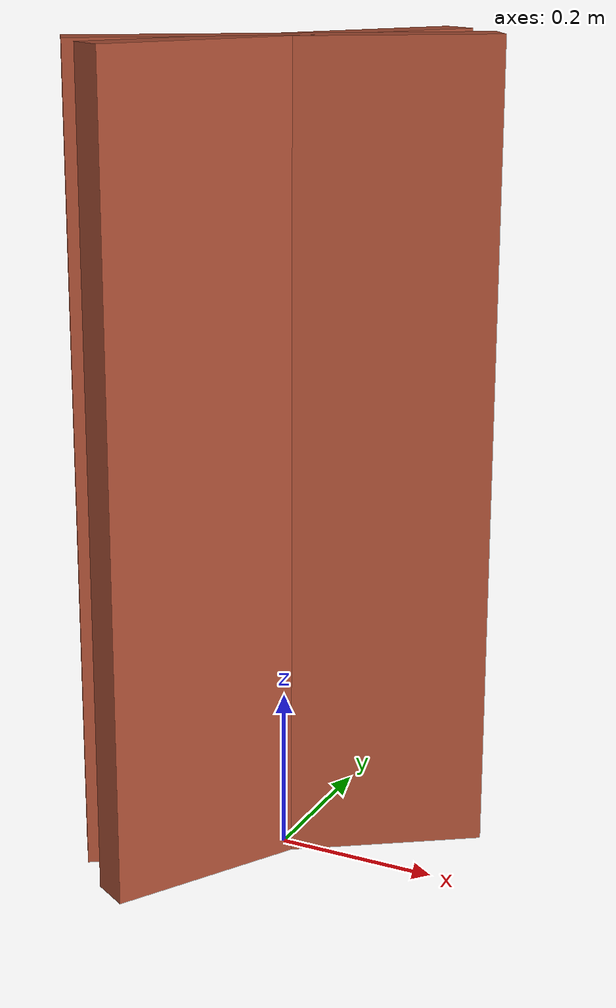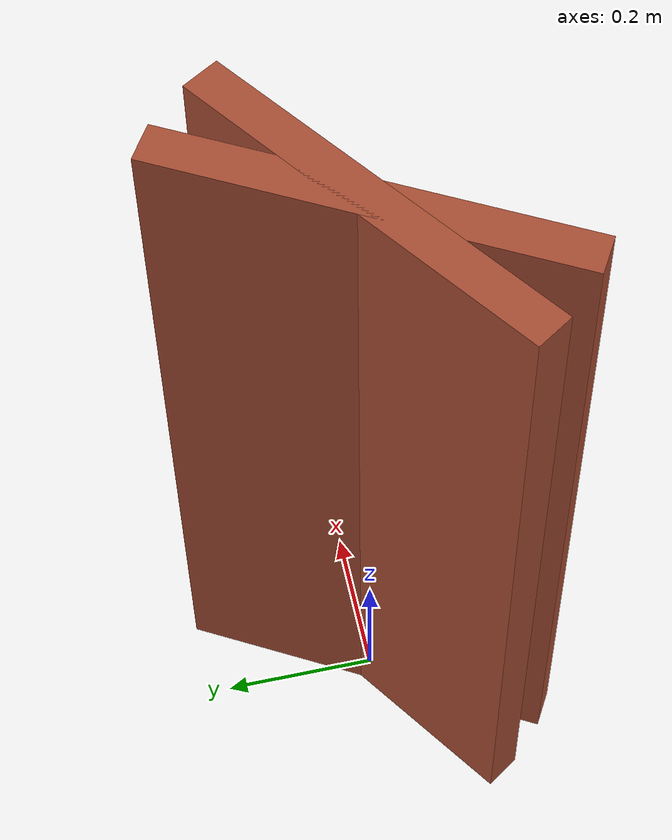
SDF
<?xml version='1.0'?>
<sdf version='1.7'>
  <model name='sqaure_2_with_curve'>
    <pose>1.28013e+07 -2.02241e+07 0 0 -0 0</pose>
    <link name='Wall_7'>
      <collision name='Wall_7_Collision'>
        <geometry>
          <box>
            <size>0.496464 0.05 1</size>
          </box>
        </geometry>
        <pose>0 0 0.5 0 -0 0</pose>
      </collision>
      <visual name='Wall_7_Visual'>
        <pose>0 0 0.5 0 -0 0</pose>
        <geometry>
          <box>
            <size>0.496464 0.05 1</size>
          </box>
        </geometry>
        <material>
          <script>
            <uri>file://media/materials/scripts/gazebo.material</uri>
            <name>Gazebo/Bricks</name>
          </script>
          <ambient>1 1 1 1</ambient>
        </material>
        <meta>
          <layer>0</layer>
        </meta>
      </visual>
      <pose>-1.28013e+07 2.02241e+07 0 0 -0 -2.54687</pose>
    </link>
    <link name='Wall_9'>
      <collision name='Wall_9_Collision'>
        <geometry>
          <box>
            <size>0.5 0.05 1</size>
          </box>
        </geometry>
        <pose>0 0 0.5 0 -0 0</pose>
      </collision>
      <visual name='Wall_9_Visual'>
        <pose>0 0 0.5 0 -0 0</pose>
        <geometry>
          <box>
            <size>0.5 0.05 1</size>
          </box>
        </geometry>
        <material>
          <script>
            <uri>file://media/materials/scripts/gazebo.material</uri>
            <name>Gazebo/Bricks</name>
          </script>
          <ambient>1 1 1 1</ambient>
        </material>
        <meta>
          <layer>0</layer>
        </meta>
      </visual>
      <pose>-1.28013e+07 2.02241e+07 0 0 -0 -2.0944</pose>
    </link>
    <static>1</static>
  </model>
</sdf>
